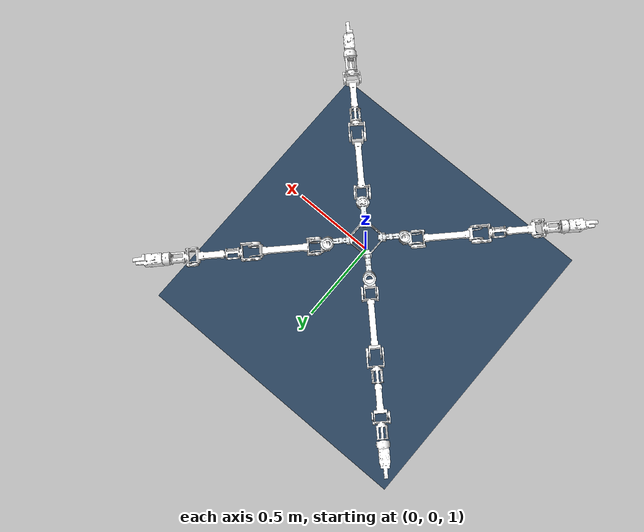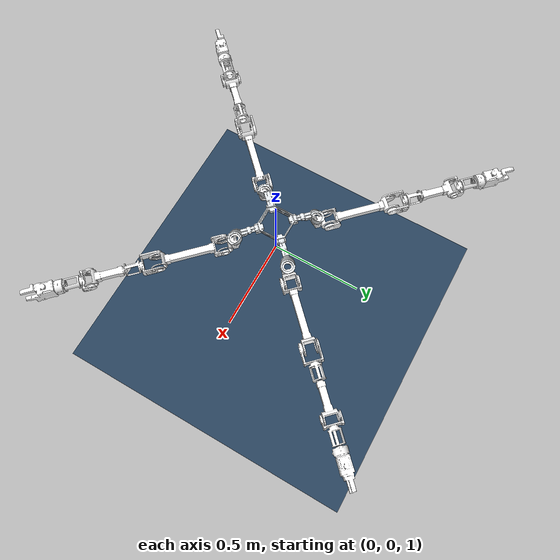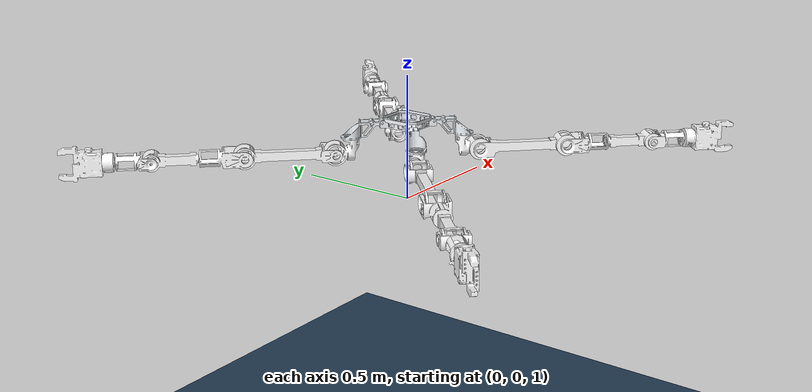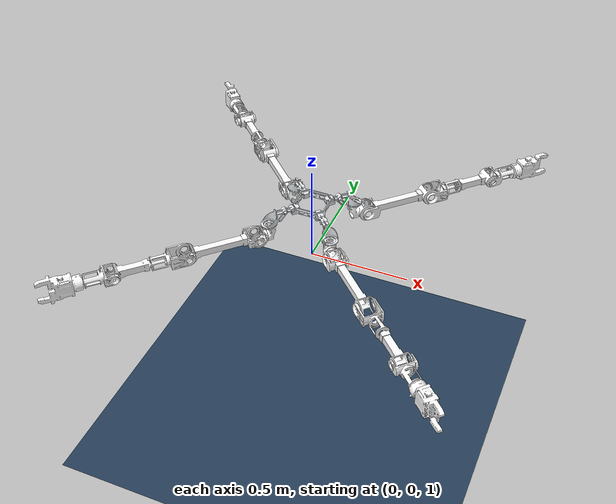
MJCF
<mujoco model="spaceRobot scene"> <!-- 定义一个MuJoCo模型，名称为“ur5e scene”。-->
  <include file="spaceRobotTest.xml"/> <!-- 包含另一个文件“ur5e.xml”，通常这个文件定义了UR5e机械臂的模型。-->
  <option gravity="0 0 0"/> <!-- 取消重力影响 -->
  <statistic center="0.3 0 0.4" extent="0.8"/> <!-- 定义场景的统计中心和范围，用于相机自动对焦等。-->
  <visual> <!-- 视觉设置，影响仿真的渲染效果。-->
    <headlight diffuse="0.6 0.6 0.6" ambient="0.1 0.1 0.1" specular="0 0 0"/> <!-- 头灯的设置，包括漫反射、环境光和高光。-->
  </visual>
  <asset> <!-- 资产定义区，包括贴图和材料。-->
    <texture type="skybox" builtin="gradient" rgb1="0.3 0.5 0.7" rgb2="0 0 0" width="512" height="3072"/> <!-- 天空盒纹理，使用渐变色。-->
    <texture type="2d" name="groundplane" builtin="checker" mark="edge" rgb1="0.2 0.3 0.4" rgb2="0.1 0.2 0.3"
      markrgb="0.8 0.8 0.8" width="300" height="300"/> <!-- 地面纹理，棋盘格样式。-->
    <material name="groundplane" texture="groundplane" texuniform="true" texrepeat="5 5" reflectance="0.2"/> <!-- 地面材料，使用上面定义的地面纹理。-->
  </asset>
  <worldbody> <!-- 世界主体部分，包含所有物理实体。-->
    <light pos="0 0 1.5" dir="0 0 -1" directional="true"/> <!-- 定向光源设置。-->
    <geom name="floor" size="1 1 0.05" type="plane" material="groundplane"/> <!-- 地面几何体，使用“groundplane”材料。-->
  </worldbody>
</mujoco>

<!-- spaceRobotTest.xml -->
<mujoco model="limbarm_robot"> <!-- MuJoCo模型定义开始，模型名称为limbarm_robot -->
  <compiler angle="radian" meshdir="assets"/> <!-- 编译器设置：角度单位为弧度，网格文件目录为assets文件夹 -->
  <asset> <!-- 资产定义开始，用于定义模型中使用的所有资源，如网格文件 -->
    <mesh name="base_link" file="base_link.STL"/> <!-- 定义一个网格资源，名称为base_link，文件来源是base_link.STL -->
    <mesh name="Link_platform" file="Link_platform.STL"/> <!-- 定义一个网格资源，名称为Link_platform，文件来源是Link_platform.STL -->
    <mesh name="Link_0" file="Link_0.STL"/> <!-- 定义一个网格资源，名称为Link_0，文件来源是Link_0.STL -->
    <mesh name="Link_1" file="Link_1.STL"/> <!-- 定义一个网格资源，名称为Link_1，文件来源是Link_1.STL -->
    <mesh name="Link_2" file="Link_2.STL"/> <!-- 定义一个网格资源，名称为Link_2，文件来源是Link_2.STL -->
    <mesh name="Link_3" file="Link_3.STL"/> <!-- 定义一个网格资源，名称为Link_3，文件来源是Link_3.STL -->
    <mesh name="Link_4" file="Link_4.STL"/> <!-- 定义一个网格资源，名称为Link_4，文件来源是Link_4.STL -->
    <mesh name="Link_5" file="Link_5.STL"/> <!-- 定义一个网格资源，名称为Link_5，文件来源是Link_5.STL -->
    <mesh name="Link_6" file="Link_6.STL"/> <!-- 定义一个网格资源，名称为Link_6，文件来源是Link_6.STL -->
    <mesh name="Hand" file="Hand.STL"/> <!-- 定义一个网格资源，名称为Hand，文件来源是Hand.STL -->
    <mesh name="Link_platlink" file="Link_platlink.STL"/> <!-- 定义一个网格资源，名称为Link_platlink，文件来源是Link_platlink.STL -->
  </asset> <!-- 资产定义结束 -->
<worldbody> <!-- 定义世界体的开始 -->
    <body name="base" pos="0 0 1.3"> <!-- 定义基座的主体，位置在(0, 0, 1.0) -->
      <geom type="mesh" rgba="0.898039 0.917647 0.929412 1" mesh="base_link"/> <!-- 定义基座的几何形状为一个网格，颜色和使用的网格文件 -->
      <body name="Link_platform" pos="0 0 0.01"> <!-- 定义名为Link_platform的子体，位置在基座之上(0, 0, 0.01) -->
        <inertial pos="0 0 0.0118908" quat="0.5 0.5 -0.5 0.5" mass="0.213013" diaginertia="0.00145983 0.000750053 0.000750053"/> <!--定义惯性元素，包括位置、质量和惯性矩-->
        <joint name="Joint_platform" pos="0 0 0" axis="0 0 1" type="slide" limited="true" range="0 0.055"/> <!-- 定义一个滑动关节，限制其滑动范围 -->
        <geom type="mesh" rgba="0.898039 0.917647 0.929412 1" mesh="Link_platform"/> <!-- 定义Link_platform的几何形状和颜色 -->
      </body>
      <body name="Link1_0" pos="0.072125 0.072125 0.018" quat="0.65328 0.653282 0.270599 0.270598"> <!-- 定义第一段连杆Link1_0，包含位置和四元数定义的姿态 -->
        <inertial pos="0.066417 -0.0201282 4.76216e-09" quat="0.596044 0.596036 0.38045 0.380435" mass="0.167856" diaginertia="0.000419768 0.000408729 7.84584e-05"/> <!-- 定义惯性属性，包括质心位置、四元数姿态、质量和对角惯性矩 -->
        <joint name="Joint1_0" pos="0 0 0" axis="0 0 1" limited="true" range="0 1.5708"/> <!-- 定义一个关节，包含轴向、限制范围 -->
        <geom type="mesh" rgba="0.898039 0.917647 0.929412 1" mesh="Link_0"/> <!-- 定义连杆的几何形状和颜色 -->
        <body name="Link1_1" pos="0.12 -0.058 0" quat="0.707105 0.707108 0 0"> <!-- 定义下一个连杆Link1_1，包含位置和姿态 -->
          <inertial pos="0.0250849 0.00345843 0.0514637" quat="0.959456 -0.0619808 0.0855757 -0.261302" mass="0.0924049" diaginertia="0.000117741 0.000104794 9.27456e-05"/> <!-- 定义惯性属性 -->
          <joint name="Joint1_1" pos="0 0 0" axis="0 0 1" limited="true" range="-2.0944 2.0944"/> <!-- 定义一个关节，设置其移动范围 -->
          <geom type="mesh" rgba="1 1 1 1" mesh="Link_1"/> <!-- 定义连杆的几何形状和颜色 -->
          <body name="Link1_2" pos="0.0625 0.0025 0.059" quat="0.707105 -0.707108 0 0"> <!-- 定义又一个连杆Link1_2，位置和姿态设置 -->
            <inertial pos="0.164755 5.52892e-05 0.00408065" quat="0.488338 0.511396 0.511396 0.488338" mass="0.199014" diaginertia="0.000550518 0.00052161 0.000156285"/> <!-- 定义惯性属性 -->
            <joint name="Joint1_2" pos="0 0 0" axis="0 0 1" limited="true" range="-2.0944 1.5708"/> <!-- 定义关节和其限制范围 -->
            <geom type="mesh" rgba="1 1 1 1" mesh="Link_2"/> <!-- 定义连杆的几何形状和颜色 -->
            <body name="Link1_3" pos="0.35 0.0002 0"> <!-- 定义下一级连杆Link1_3，位置设置 -->
              <inertial pos="0.0720098 -0.000448351 0.00124427" quat="0.393678 0.58419 0.592968 0.390035" mass="0.133696" diaginertia="0.000205796 0.000197193 0.000101151"/> <!--定义惯性属性，包括质心位置、四元数姿态、质量和对角惯性矩 -->
              <joint name="Joint1_3" pos="0 0 0" axis="0 0 1" limited="true" range="-2.53073 2.53073"/> <!-- 定义一个关节，设置其移动范围 -->
              <geom type="mesh" rgba="1 1 1 1" mesh="Link_3"/> <!-- 定义连杆的几何形状和颜色 -->
              <body name="Link1_4" pos="0.1745 0 0" quat="0.707105 0 0.707108 0"> <!-- 定义下一个连杆Link1_4，位置和姿态设置 -->
                <inertial pos="-0.00219596 0 0.109373" quat="0.705855 -0.0420633 -0.0420633 0.705855" mass="0.0991853" diaginertia="0.000118365 0.000104482 7.01472e-05"/> <!-- 定义惯性属性 -->
                <joint name="Joint1_4" pos="0 0 0" axis="0 0 1" limited="true" range="-3.14159 3.14159"/> <!-- 定义一个全向旋转关节，没有移动限制 -->
                <geom type="mesh" rgba="1 1 1 1" mesh="Link_4"/> <!-- 定义连杆的几何形状和颜色 -->
                <body name="Link1_5" pos="0 0 0.1795" quat="-2.59734e-06 0.707105 2.59735e-06 0.707108"> <!-- 定义下一个连杆Link1_5，位置和姿态设置 -->
                  <inertial pos="0.0516421 -0.000601786 0.00160323" quat="0.663071 -0.213494 -0.209004 0.686349" mass="0.102912" diaginertia="0.000113253 0.000106013 6.90309e-05"/> <!-- 定义惯性属性 -->
                  <joint name="Joint1_5" pos="0 0 0" axis="0 0 1" limited="true" range="-1.91986 1.91986"/> <!-- 定义一个关节，设置其移动范围 -->
                  <geom type="mesh" rgba="1 1 1 1" mesh="Link_5"/> <!-- 定义连杆的几何形状和颜色 -->
                  <body name="Link1_6" pos="0.141 0 0" quat="0.707105 0 0.707108 0"> <!-- 定义最后一个连杆Link1_6，位置和姿态设置 -->
                    <inertial pos="7.58852e-06 -0.00109374 0.0825537" quat="0.999314 0.014463 -0.000936338 -0.03408" mass="0.440813" diaginertia="0.00107048 0.000954794 0.000369092"/> <!-- 定义惯性属性 -->
                    <joint name="Joint1_6" pos="0 0 0" axis="0 0 1" limited="true" range="-3.14159 3.14159"/> <!-- 定义一个全向旋转关节，没有移动限制 -->
                    <geom type="mesh" rgba="1 1 1 1" mesh="Link_6"/> <!-- 定义连杆的几何形状和颜色 -->
                    <geom pos="0 0 0.0385" type="mesh" rgba="1 1 1 1" mesh="Hand"/> <!-- 定义手部的几何形状，位置相对于Link1_6 -->
                  </body>
                </body>
              </body>
            </body>
          </body>
        </body>
      </body>

      <body name="Link2_0" pos="-0.072125 0.072125 0.018" quat="0.270596 0.270597 0.653283 0.653281">
        <inertial pos="0.066417 -0.0201282 4.76216e-09" quat="0.596044 0.596036 0.38045 0.380435" mass="0.167856" diaginertia="0.000419768 0.000408729 7.84584e-05"/>
        <joint name="Joint2_0" pos="0 0 0" axis="0 0 1" limited="true" range="0 1.5708"/>
        <geom type="mesh" rgba="0.898039 0.917647 0.929412 1" mesh="Link_0"/>
        <body name="Link2_1" pos="0.12 -0.058 0" quat="0.707105 0.707108 0 0">
          <inertial pos="0.0250849 0.00345843 0.0514637" quat="0.959456 -0.0619808 0.0855757 -0.261302" mass="0.0924049" diaginertia="0.000117741 0.000104794 9.27456e-05"/>
          <joint name="Joint2_1" pos="0 0 0" axis="0 0 1" limited="true" range="-2.0944 2.0944"/>
          <geom type="mesh" rgba="1 1 1 1" mesh="Link_1"/>
          <body name="Link2_2" pos="0.0625 0.0025 0.059" quat="0.707105 -0.707108 0 0">
            <inertial pos="0.164755 5.52892e-05 0.00408065" quat="0.488338 0.511396 0.511396 0.488338" mass="0.199014" diaginertia="0.000550518 0.00052161 0.000156285"/>
            <joint name="Joint2_2" pos="0 0 0" axis="0 0 1" limited="true" range="-2.0944 1.5708"/>
            <geom type="mesh" rgba="1 1 1 1" mesh="Link_2"/>
            <body name="Link2_3" pos="0.35 0.0002 0">
              <inertial pos="0.0720098 -0.000448351 0.00124427" quat="0.393678 0.58419 0.592968 0.390035" mass="0.133696" diaginertia="0.000205796 0.000197193 0.000101151"/>
              <joint name="Joint2_3" pos="0 0 0" axis="0 0 1" limited="true" range="-2.53073 2.53073"/>
              <geom type="mesh" rgba="1 1 1 1" mesh="Link_3"/>
              <body name="Link2_4" pos="0.1745 0 0" quat="0.707105 0 0.707108 0">
                <inertial pos="-0.00219596 0 0.109373" quat="0.705855 -0.0420633 -0.0420633 0.705855" mass="0.0991853" diaginertia="0.000118365 0.000104482 7.01472e-05"/>
                <joint name="Joint2_4" pos="0 0 0" axis="0 0 1" limited="true" range="-3.14159 3.14159"/>
                <geom type="mesh" rgba="1 1 1 1" mesh="Link_4"/>
                <body name="Link2_5" pos="0 0 0.1795" quat="-2.59734e-06 0.707105 2.59735e-06 0.707108">
                  <inertial pos="0.0516421 -0.000601786 0.00160323" quat="0.663071 -0.213494 -0.209004 0.686349" mass="0.102912" diaginertia="0.000113253 0.000106013 6.90309e-05"/>
                  <joint name="Joint2_5" pos="0 0 0" axis="0 0 1" limited="true" range="-1.91986 1.91986"/>
                  <geom type="mesh" rgba="1 1 1 1" mesh="Link_5"/>
                  <body name="Link2_6" pos="0.141 0 0" quat="0.707105 0 0.707108 0">
                    <inertial pos="7.58852e-06 -0.00109374 0.0825537" quat="0.999314 0.014463 -0.000936338 -0.03408" mass="0.440813" diaginertia="0.00107048 0.000954794 0.000369092"/>
                    <joint name="Joint2_6" pos="0 0 0" axis="0 0 1" limited="true" range="-3.14159 3.14159"/>
                    <geom type="mesh" rgba="1 1 1 1" mesh="Link_6"/>
                    <geom pos="0 0 0.0385" type="mesh" rgba="1 1 1 1" mesh="Hand"/>
                  </body>
                </body>
              </body>
            </body>
          </body>
        </body>
      </body>
      <body name="Link3_0" pos="0.072125 -0.072125 0.018" quat="0.65328 0.653282 -0.270599 -0.270598">
        <inertial pos="0.066417 -0.0201282 4.76216e-09" quat="0.596044 0.596036 0.38045 0.380435" mass="0.167856" diaginertia="0.000419768 0.000408729 7.84584e-05"/>
        <joint name="Joint3_0" pos="0 0 0" axis="0 0 1" limited="true" range="0 1.5708"/>
        <geom type="mesh" rgba="0.898039 0.917647 0.929412 1" mesh="Link_0"/>
        <body name="Link3_1" pos="0.12 -0.058 0" quat="0.707105 0.707108 0 0">
          <inertial pos="0.0250849 0.00345843 0.0514637" quat="0.959456 -0.0619808 0.0855757 -0.261302" mass="0.0924049" diaginertia="0.000117741 0.000104794 9.27456e-05"/>
          <joint name="Joint3_1" pos="0 0 0" axis="0 0 1" limited="true" range="-2.0944 2.0944"/>
          <geom type="mesh" rgba="1 1 1 1" mesh="Link_1"/>
          <body name="Link3_2" pos="0.0625 0.0025 0.059" quat="0.707105 -0.707108 0 0">
            <inertial pos="0.164755 5.52892e-05 0.00408065" quat="0.488338 0.511396 0.511396 0.488338" mass="0.199014" diaginertia="0.000550518 0.00052161 0.000156285"/>
            <joint name="Joint3_2" pos="0 0 0" axis="0 0 1" limited="true" range="-2.0944 1.5708"/>
            <geom type="mesh" rgba="1 1 1 1" mesh="Link_2"/>
            <body name="Link3_3" pos="0.35 0.0002 0">
              <inertial pos="0.0720098 -0.000448351 0.00124427" quat="0.393678 0.58419 0.592968 0.390035" mass="0.133696" diaginertia="0.000205796 0.000197193 0.000101151"/>
              <joint name="Joint3_3" pos="0 0 0" axis="0 0 1" limited="true" range="-2.53073 2.53073"/>
              <geom type="mesh" rgba="1 1 1 1" mesh="Link_3"/>
              <body name="Link3_4" pos="0.1745 0 0" quat="0.707105 0 0.707108 0">
                <inertial pos="-0.00219596 0 0.109373" quat="0.705855 -0.0420633 -0.0420633 0.705855" mass="0.0991853" diaginertia="0.000118365 0.000104482 7.01472e-05"/>
                <joint name="Joint3_4" pos="0 0 0" axis="0 0 1" limited="true" range="-3.14159 3.14159"/>
                <geom type="mesh" rgba="1 1 1 1" mesh="Link_4"/>
                <body name="Link3_5" pos="0 0 0.1795" quat="-2.59734e-06 0.707105 2.59735e-06 0.707108">
                  <inertial pos="0.0516421 -0.000601786 0.00160323" quat="0.663071 -0.213494 -0.209004 0.686349" mass="0.102912" diaginertia="0.000113253 0.000106013 6.90309e-05"/>
                  <joint name="Joint3_5" pos="0 0 0" axis="0 0 1" limited="true" range="-1.91986 1.91986"/>
                  <geom type="mesh" rgba="1 1 1 1" mesh="Link_5"/>
                  <body name="Link3_6" pos="0.141 0 0" quat="0.707105 0 0.707108 0">
                    <inertial pos="7.58852e-06 -0.00109374 0.0825537" quat="0.999314 0.014463 -0.000936338 -0.03408" mass="0.440813" diaginertia="0.00107048 0.000954794 0.000369092"/>
                    <joint name="Joint3_6" pos="0 0 0" axis="0 0 1" limited="true" range="-3.14159 3.14159"/>
                    <geom type="mesh" rgba="1 1 1 1" mesh="Link_6"/>
                    <geom pos="0 0 0.0385" type="mesh" rgba="1 1 1 1" mesh="Hand"/>
                  </body>
                </body>
              </body>
            </body>
          </body>
        </body>
      </body>
      <body name="Link4_0" pos="-0.072125 -0.072125 0.018" quat="0.270596 0.270597 -0.653283 -0.653281">
        <inertial pos="0.066417 -0.0201282 4.76216e-09" quat="0.596044 0.596036 0.38045 0.380435" mass="0.167856" diaginertia="0.000419768 0.000408729 7.84584e-05"/>
        <joint name="Joint4_0" pos="0 0 0" axis="0 0 1" limited="true" range="0 1.5708"/>
        <geom type="mesh" rgba="0.898039 0.917647 0.929412 1" mesh="Link_0"/>
        <body name="Link4_1" pos="0.12 -0.058 0" quat="0.707105 0.707108 0 0">
          <inertial pos="0.0250849 0.00345843 0.0514637" quat="0.959456 -0.0619808 0.0855757 -0.261302" mass="0.0924049" diaginertia="0.000117741 0.000104794 9.27456e-05"/>
          <joint name="Joint4_1" pos="0 0 0" axis="0 0 1" limited="true" range="-2.0944 2.0944"/>
          <geom type="mesh" rgba="1 1 1 1" mesh="Link_1"/>
          <body name="Link4_2" pos="0.0625 0.0025 0.059" quat="0.707105 -0.707108 0 0">
            <inertial pos="0.164755 5.52892e-05 0.00408065" quat="0.488338 0.511396 0.511396 0.488338" mass="0.199014" diaginertia="0.000550518 0.00052161 0.000156285"/>
            <joint name="Joint4_2" pos="0 0 0" axis="0 0 1" limited="true" range="-2.0944 1.5708"/>
            <geom type="mesh" rgba="1 1 1 1" mesh="Link_2"/>
            <body name="Link4_3" pos="0.35 0.0002 0">
              <inertial pos="0.0720098 -0.000448351 0.00124427" quat="0.393678 0.58419 0.592968 0.390035" mass="0.133696" diaginertia="0.000205796 0.000197193 0.000101151"/>
              <joint name="Joint4_3" pos="0 0 0" axis="0 0 1" limited="true" range="-2.53073 2.53073"/>
              <geom type="mesh" rgba="1 1 1 1" mesh="Link_3"/>
              <body name="Link4_4" pos="0.1745 0 0" quat="0.707105 0 0.707108 0">
                <inertial pos="-0.00219596 0 0.109373" quat="0.705855 -0.0420633 -0.0420633 0.705855" mass="0.0991853" diaginertia="0.000118365 0.000104482 7.01472e-05"/>
                <joint name="Joint4_4" pos="0 0 0" axis="0 0 1" limited="true" range="-3.14159 3.14159"/>
                <geom type="mesh" rgba="1 1 1 1" mesh="Link_4"/>
                <body name="Link4_5" pos="0 0 0.1795" quat="-2.59734e-06 0.707105 2.59735e-06 0.707108">
                  <inertial pos="0.0516421 -0.000601786 0.00160323" quat="0.663071 -0.213494 -0.209004 0.686349" mass="0.102912" diaginertia="0.000113253 0.000106013 6.90309e-05"/>
                  <joint name="Joint4_5" pos="0 0 0" axis="0 0 1" limited="true" range="-1.91986 1.91986"/>
                  <geom type="mesh" rgba="1 1 1 1" mesh="Link_5"/>
                  <body name="Link4_6" pos="0.141 0 0" quat="0.707105 0 0.707108 0">
                    <inertial pos="7.58852e-06 -0.00109374 0.0825537" quat="0.999314 0.014463 -0.000936338 -0.03408" mass="0.440813" diaginertia="0.00107048 0.000954794 0.000369092"/>
                    <joint name="Joint4_6" pos="0 0 0" axis="0 0 1" limited="true" range="-3.14159 3.14159"/>
                    <geom type="mesh" rgba="1 1 1 1" mesh="Link_6"/>
                    <geom pos="0 0 0.0385" type="mesh" rgba="1 1 1 1" mesh="Hand"/>
                  </body>
                </body>
              </body>
            </body>
          </body>
        </body>
      </body>
    </body>
  </worldbody>
  <actuator>
    <motor name="platform" joint="Joint_platform"/>
    <motor name="motor1" joint="Joint1_0"/>
    <motor name="motor2" joint="Joint2_0"/>
    <motor name="motor3" joint="Joint3_0"/>
    <motor name="motor4" joint="Joint4_0"/>
    <motor name="shoulder_pan1" joint="Joint1_1"/>
    <motor name="shoulder_lift1" joint="Joint1_2"/>
    <motor name="elbow1" joint="Joint1_3"/>
    <motor name="wrist_11" joint="Joint1_4"/>
    <motor name="wrist_21" joint="Joint1_5"/>
    <motor name="wrist_31" joint="Joint1_6"/>
    <motor name="shoulder_pan2" joint="Joint2_1"/>
    <motor name="shoulder_lift2" joint="Joint2_2"/>
    <motor name="elbow2" joint="Joint2_3"/>
    <motor name="wrist_12" joint="Joint2_4"/>
    <motor name="wrist_22" joint="Joint2_5"/>
    <motor name="wrist_32" joint="Joint2_6"/>
    <motor name="shoulder_pan3" joint="Joint3_1"/>
    <motor name="shoulder_lift3" joint="Joint3_2"/>
    <motor name="elbow3" joint="Joint3_3"/>
    <motor name="wrist_13" joint="Joint3_4"/>
    <motor name="wrist_23" joint="Joint3_5"/>
    <motor name="wrist_33" joint="Joint3_6"/>
    <motor name="shoulder_pan4" joint="Joint4_1"/>
    <motor name="shoulder_lift4" joint="Joint4_2"/>
    <motor name="elbow4" joint="Joint4_3"/>
    <motor name="wrist_14" joint="Joint4_4"/>
    <motor name="wrist_24" joint="Joint4_5"/>
    <motor name="wrist_34" joint="Joint4_6"/>
  </actuator>
</mujoco>
